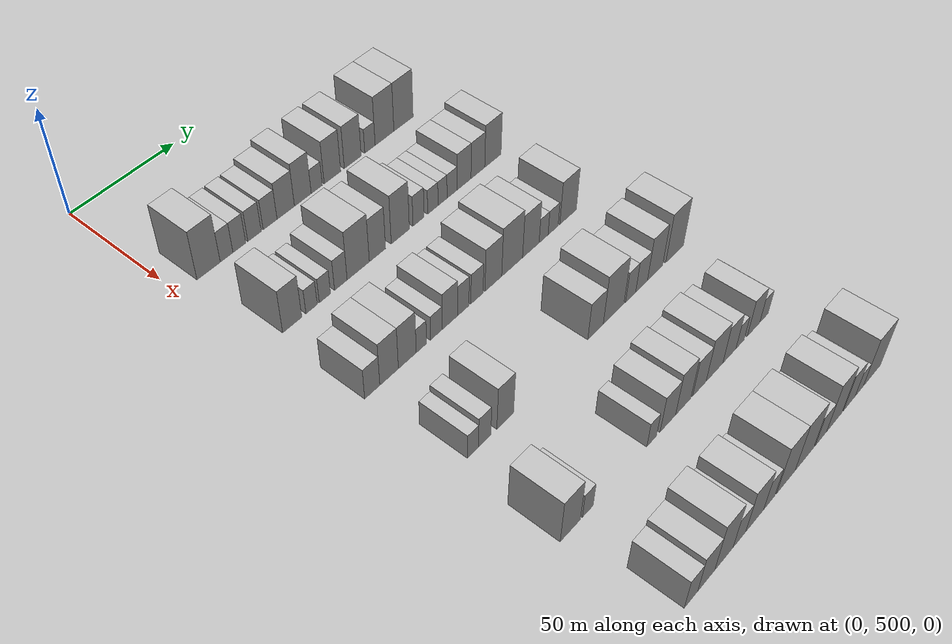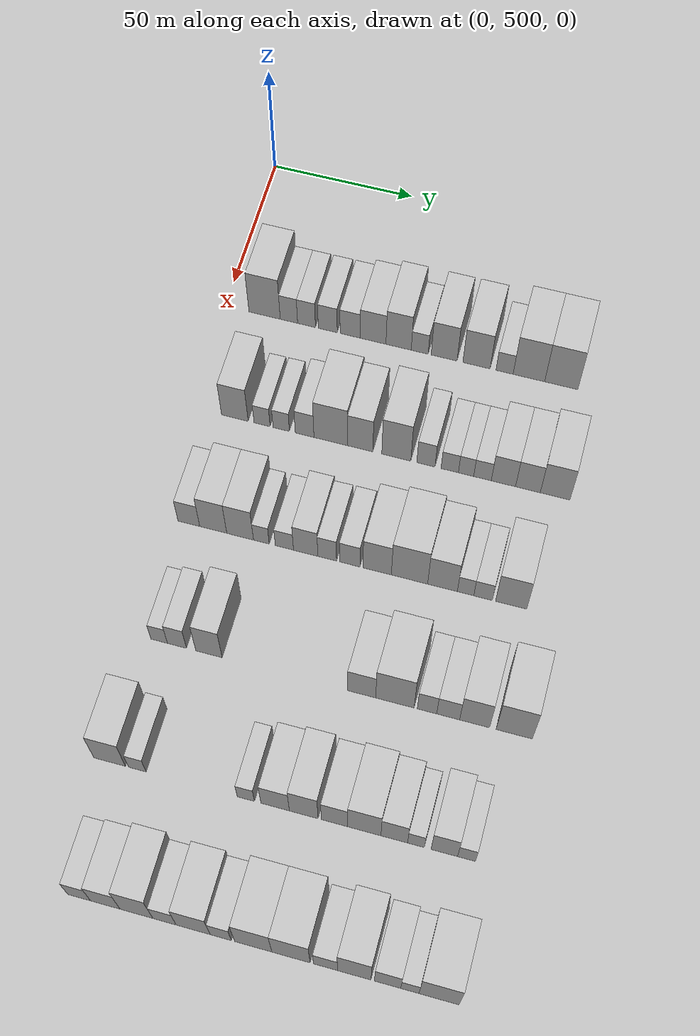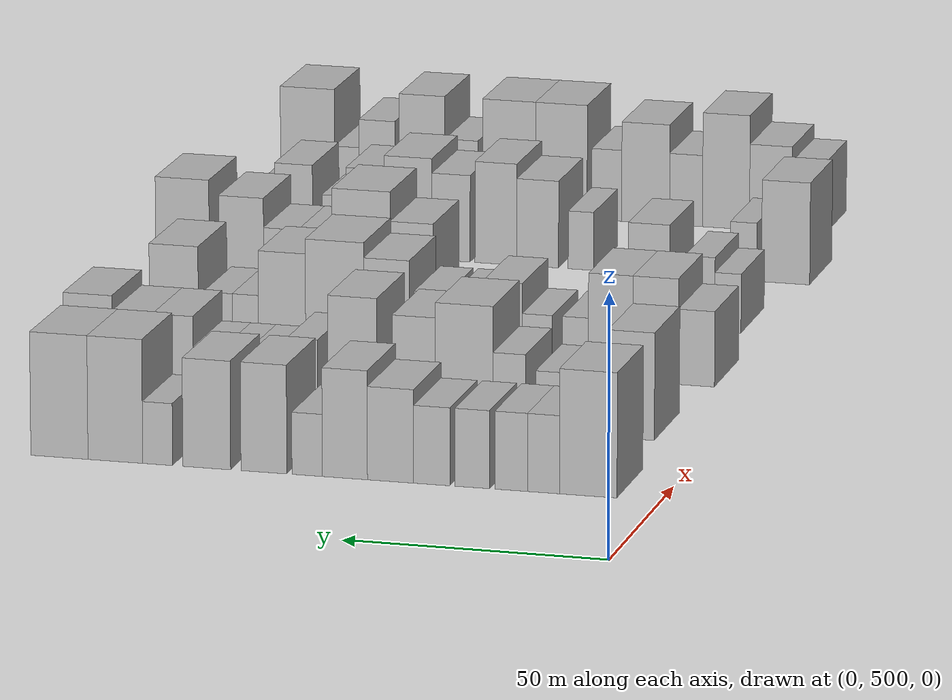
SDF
<sdf version="1.6">
 <world name="default">
  <model name="building_123">
   <static>1</static>
   <pose>50.0000 513.9154 0 0.000000 0.000000 0.000000</pose>
   <link name="link">
    <pose>0 0 12.00 0 0 0</pose>
    <collision name="collision"><geometry><box><size>20.0000 11.0060 24.0000</size></box></geometry></collision>
    <visual name="visual">
     <cast_shadows>0</cast_shadows>
     <geometry><box><size>20.0000 11.0060 24.0000</size></box></geometry>
     <material>
      <script>
       <uri>model://HANNAS_wall/materials/scripts</uri>
       <uri>model://HANNAS_wall/materials/textures</uri>
       <name>vrc/HANNAS_wall</name>
      </script>
     </material>
    </visual>
   </link>
  </model>
  <model name="building_124">
   <static>1</static>
   <pose>50.0000 522.4660 0 0.000000 0.000000 0.000000</pose>
   <link name="link">
    <pose>0 0 7.50 0 0 0</pose>
    <collision name="collision"><geometry><box><size>20.0000 6.0952 15.0000</size></box></geometry></collision>
    <visual name="visual">
     <cast_shadows>0</cast_shadows>
     <geometry><box><size>20.0000 6.0952 15.0000</size></box></geometry>
     <material>
      <script>
       <uri>model://HANNAS_wall/materials/scripts</uri>
       <uri>model://HANNAS_wall/materials/textures</uri>
       <name>vrc/HANNAS_wall</name>
      </script>
     </material>
    </visual>
   </link>
  </model>
  <model name="building_125">
   <static>1</static>
   <pose>50.0000 528.6390 0 0.000000 0.000000 0.000000</pose>
   <link name="link">
    <pose>0 0 7.50 0 0 0</pose>
    <collision name="collision"><geometry><box><size>20.0000 6.2508 15.0000</size></box></geometry></collision>
    <visual name="visual">
     <cast_shadows>0</cast_shadows>
     <geometry><box><size>20.0000 6.2508 15.0000</size></box></geometry>
     <material>
      <script>
       <uri>model://HANNAS_wall/materials/scripts</uri>
       <uri>model://HANNAS_wall/materials/textures</uri>
       <name>vrc/HANNAS_wall</name>
      </script>
     </material>
    </visual>
   </link>
  </model>
  <model name="building_126">
   <static>1</static>
   <pose>50.0000 536.0721 0 0.000000 0.000000 0.000000</pose>
   <link name="link">
    <pose>0 0 7.50 0 0 0</pose>
    <collision name="collision"><geometry><box><size>20.0000 6.6155 15.0000</size></box></geometry></collision>
    <visual name="visual">
     <cast_shadows>0</cast_shadows>
     <geometry><box><size>20.0000 6.6155 15.0000</size></box></geometry>
     <material>
      <script>
       <uri>model://HANNAS_wall/materials/scripts</uri>
       <uri>model://HANNAS_wall/materials/textures</uri>
       <name>vrc/HANNAS_wall</name>
      </script>
     </material>
    </visual>
   </link>
  </model>
  <model name="building_127">
   <static>1</static>
   <pose>50.0000 543.8717 0 0.000000 0.000000 0.000000</pose>
   <link name="link">
    <pose>0 0 7.50 0 0 0</pose>
    <collision name="collision"><geometry><box><size>20.0000 6.9836 15.0000</size></box></geometry></collision>
    <visual name="visual">
     <cast_shadows>0</cast_shadows>
     <geometry><box><size>20.0000 6.9836 15.0000</size></box></geometry>
     <material>
      <script>
       <uri>model://HANNAS_wall/materials/scripts</uri>
       <uri>model://HANNAS_wall/materials/textures</uri>
       <name>vrc/HANNAS_wall</name>
      </script>
     </material>
    </visual>
   </link>
  </model>
  <model name="building_128">
   <static>1</static>
   <pose>50.0000 551.8238 0 0.000000 0.000000 0.000000</pose>
   <link name="link">
    <pose>0 0 9.00 0 0 0</pose>
    <collision name="collision"><geometry><box><size>20.0000 8.9206 18.0000</size></box></geometry></collision>
    <visual name="visual">
     <cast_shadows>0</cast_shadows>
     <geometry><box><size>20.0000 8.9206 18.0000</size></box></geometry>
     <material>
      <script>
       <uri>model://HANNAS_wall/materials/scripts</uri>
       <uri>model://HANNAS_wall/materials/textures</uri>
       <name>vrc/HANNAS_wall</name>
      </script>
     </material>
    </visual>
   </link>
  </model>
  <model name="building_129">
   <static>1</static>
   <pose>50.0000 560.6612 0 0.000000 0.000000 0.000000</pose>
   <link name="link">
    <pose>0 0 10.50 0 0 0</pose>
    <collision name="collision"><geometry><box><size>20.0000 8.7543 21.0000</size></box></geometry></collision>
    <visual name="visual">
     <cast_shadows>0</cast_shadows>
     <geometry><box><size>20.0000 8.7543 21.0000</size></box></geometry>
     <material>
      <script>
       <uri>model://HANNAS_wall/materials/scripts</uri>
       <uri>model://HANNAS_wall/materials/textures</uri>
       <name>vrc/HANNAS_wall</name>
      </script>
     </material>
    </visual>
   </link>
  </model>
  <model name="building_130">
   <static>1</static>
   <pose>50.0000 567.9628 0 0.000000 0.000000 0.000000</pose>
   <link name="link">
    <pose>0 0 6.00 0 0 0</pose>
    <collision name="collision"><geometry><box><size>20.0000 5.8488 12.0000</size></box></geometry></collision>
    <visual name="visual">
     <cast_shadows>0</cast_shadows>
     <geometry><box><size>20.0000 5.8488 12.0000</size></box></geometry>
     <material>
      <script>
       <uri>model://HANNAS_wall/materials/scripts</uri>
       <uri>model://HANNAS_wall/materials/textures</uri>
       <name>vrc/HANNAS_wall</name>
      </script>
     </material>
    </visual>
   </link>
  </model>
  <model name="building_131">
   <static>1</static>
   <pose>50.0000 576.3383 0 0.000000 0.000000 0.000000</pose>
   <link name="link">
    <pose>0 0 10.50 0 0 0</pose>
    <collision name="collision"><geometry><box><size>20.0000 8.9023 21.0000</size></box></geometry></collision>
    <visual name="visual">
     <cast_shadows>0</cast_shadows>
     <geometry><box><size>20.0000 8.9023 21.0000</size></box></geometry>
     <material>
      <script>
       <uri>model://HANNAS_wall/materials/scripts</uri>
       <uri>model://HANNAS_wall/materials/textures</uri>
       <name>vrc/HANNAS_wall</name>
      </script>
     </material>
    </visual>
   </link>
  </model>
  <model name="building_132">
   <static>1</static>
   <pose>50.0000 587.4466 0 0.000000 0.000000 0.000000</pose>
   <link name="link">
    <pose>0 0 10.50 0 0 0</pose>
    <collision name="collision"><geometry><box><size>20.0000 9.3142 21.0000</size></box></geometry></collision>
    <visual name="visual">
     <cast_shadows>0</cast_shadows>
     <geometry><box><size>20.0000 9.3142 21.0000</size></box></geometry>
     <material>
      <script>
       <uri>model://HANNAS_wall/materials/scripts</uri>
       <uri>model://HANNAS_wall/materials/textures</uri>
       <name>vrc/HANNAS_wall</name>
      </script>
     </material>
    </visual>
   </link>
  </model>
  <model name="building_133">
   <static>1</static>
   <pose>50.0000 597.0192 0 0.000000 0.000000 0.000000</pose>
   <link name="link">
    <pose>0 0 6.00 0 0 0</pose>
    <collision name="collision"><geometry><box><size>20.0000 5.8309 12.0000</size></box></geometry></collision>
    <visual name="visual">
     <cast_shadows>0</cast_shadows>
     <geometry><box><size>20.0000 5.8309 12.0000</size></box></geometry>
     <material>
      <script>
       <uri>model://HANNAS_wall/materials/scripts</uri>
       <uri>model://HANNAS_wall/materials/textures</uri>
       <name>vrc/HANNAS_wall</name>
      </script>
     </material>
    </visual>
   </link>
  </model>
  <model name="building_134">
   <static>1</static>
   <pose>50.0000 605.2882 0 0.000000 0.000000 0.000000</pose>
   <link name="link">
    <pose>0 0 12.00 0 0 0</pose>
    <collision name="collision"><geometry><box><size>20.0000 10.7073 24.0000</size></box></geometry></collision>
    <visual name="visual">
     <cast_shadows>0</cast_shadows>
     <geometry><box><size>20.0000 10.7073 24.0000</size></box></geometry>
     <material>
      <script>
       <uri>model://HANNAS_wall/materials/scripts</uri>
       <uri>model://HANNAS_wall/materials/textures</uri>
       <name>vrc/HANNAS_wall</name>
      </script>
     </material>
    </visual>
   </link>
  </model>
  <model name="building_135">
   <static>1</static>
   <pose>50.0000 616.2493 0 0.000000 0.000000 0.000000</pose>
   <link name="link">
    <pose>0 0 12.00 0 0 0</pose>
    <collision name="collision"><geometry><box><size>20.0000 11.2149 24.0000</size></box></geometry></collision>
    <visual name="visual">
     <cast_shadows>0</cast_shadows>
     <geometry><box><size>20.0000 11.2149 24.0000</size></box></geometry>
     <material>
      <script>
       <uri>model://HANNAS_wall/materials/scripts</uri>
       <uri>model://HANNAS_wall/materials/textures</uri>
       <name>vrc/HANNAS_wall</name>
      </script>
     </material>
    </visual>
   </link>
  </model>
  <model name="building_263">
   <static>1</static>
   <pose>90.0000 515.6622 0 0.000000 0.000000 0.000000</pose>
   <link name="link">
    <pose>0 0 10.50 0 0 0</pose>
    <collision name="collision"><geometry><box><size>20.0000 9.1155 21.0000</size></box></geometry></collision>
    <visual name="visual">
     <cast_shadows>0</cast_shadows>
     <geometry><box><size>20.0000 9.1155 21.0000</size></box></geometry>
     <material>
      <script>
       <uri>model://HANNAS_wall/materials/scripts</uri>
       <uri>model://HANNAS_wall/materials/textures</uri>
       <name>vrc/HANNAS_wall</name>
      </script>
     </material>
    </visual>
   </link>
  </model>
  <model name="building_264">
   <static>1</static>
   <pose>90.0000 524.9588 0 0.000000 0.000000 0.000000</pose>
   <link name="link">
    <pose>0 0 6.00 0 0 0</pose>
    <collision name="collision"><geometry><box><size>20.0000 5.4777 12.0000</size></box></geometry></collision>
    <visual name="visual">
     <cast_shadows>0</cast_shadows>
     <geometry><box><size>20.0000 5.4777 12.0000</size></box></geometry>
     <material>
      <script>
       <uri>model://HANNAS_wall/materials/scripts</uri>
       <uri>model://HANNAS_wall/materials/textures</uri>
       <name>vrc/HANNAS_wall</name>
      </script>
     </material>
    </visual>
   </link>
  </model>
  <model name="building_265">
   <static>1</static>
   <pose>90.0000 531.4737 0 0.000000 0.000000 0.000000</pose>
   <link name="link">
    <pose>0 0 6.00 0 0 0</pose>
    <collision name="collision"><geometry><box><size>20.0000 5.5520 12.0000</size></box></geometry></collision>
    <visual name="visual">
     <cast_shadows>0</cast_shadows>
     <geometry><box><size>20.0000 5.5520 12.0000</size></box></geometry>
     <material>
      <script>
       <uri>model://HANNAS_wall/materials/scripts</uri>
       <uri>model://HANNAS_wall/materials/textures</uri>
       <name>vrc/HANNAS_wall</name>
      </script>
     </material>
    </visual>
   </link>
  </model>
  <model name="building_266">
   <static>1</static>
   <pose>90.0000 539.4101 0 0.000000 0.000000 0.000000</pose>
   <link name="link">
    <pose>0 0 7.50 0 0 0</pose>
    <collision name="collision"><geometry><box><size>20.0000 6.3207 15.0000</size></box></geometry></collision>
    <visual name="visual">
     <cast_shadows>0</cast_shadows>
     <geometry><box><size>20.0000 6.3207 15.0000</size></box></geometry>
     <material>
      <script>
       <uri>model://HANNAS_wall/materials/scripts</uri>
       <uri>model://HANNAS_wall/materials/textures</uri>
       <name>vrc/HANNAS_wall</name>
      </script>
     </material>
    </visual>
   </link>
  </model>
  <model name="building_267">
   <static>1</static>
   <pose>90.0000 548.2518 0 0.000000 0.000000 0.000000</pose>
   <link name="link">
    <pose>0 0 12.00 0 0 0</pose>
    <collision name="collision"><geometry><box><size>20.0000 11.3627 24.0000</size></box></geometry></collision>
    <visual name="visual">
     <cast_shadows>0</cast_shadows>
     <geometry><box><size>20.0000 11.3627 24.0000</size></box></geometry>
     <material>
      <script>
       <uri>model://HANNAS_wall/materials/scripts</uri>
       <uri>model://HANNAS_wall/materials/textures</uri>
       <name>vrc/HANNAS_wall</name>
      </script>
     </material>
    </visual>
   </link>
  </model>
  <model name="building_268">
   <static>1</static>
   <pose>90.0000 558.1723 0 0.000000 0.000000 0.000000</pose>
   <link name="link">
    <pose>0 0 10.50 0 0 0</pose>
    <collision name="collision"><geometry><box><size>20.0000 8.4783 21.0000</size></box></geometry></collision>
    <visual name="visual">
     <cast_shadows>0</cast_shadows>
     <geometry><box><size>20.0000 8.4783 21.0000</size></box></geometry>
     <material>
      <script>
       <uri>model://HANNAS_wall/materials/scripts</uri>
       <uri>model://HANNAS_wall/materials/textures</uri>
       <name>vrc/HANNAS_wall</name>
      </script>
     </material>
    </visual>
   </link>
  </model>
  <model name="building_269">
   <static>1</static>
   <pose>90.0000 570.2705 0 0.000000 0.000000 0.000000</pose>
   <link name="link">
    <pose>0 0 12.00 0 0 0</pose>
    <collision name="collision"><geometry><box><size>20.0000 9.7180 24.0000</size></box></geometry></collision>
    <visual name="visual">
     <cast_shadows>0</cast_shadows>
     <geometry><box><size>20.0000 9.7180 24.0000</size></box></geometry>
     <material>
      <script>
       <uri>model://HANNAS_wall/materials/scripts</uri>
       <uri>model://HANNAS_wall/materials/textures</uri>
       <name>vrc/HANNAS_wall</name>
      </script>
     </material>
    </visual>
   </link>
  </model>
  <model name="building_270">
   <static>1</static>
   <pose>90.0000 580.1605 0 0.000000 0.000000 0.000000</pose>
   <link name="link">
    <pose>0 0 7.50 0 0 0</pose>
    <collision name="collision"><geometry><box><size>20.0000 6.0621 15.0000</size></box></geometry></collision>
    <visual name="visual">
     <cast_shadows>0</cast_shadows>
     <geometry><box><size>20.0000 6.0621 15.0000</size></box></geometry>
     <material>
      <script>
       <uri>model://HANNAS_wall/materials/scripts</uri>
       <uri>model://HANNAS_wall/materials/textures</uri>
       <name>vrc/HANNAS_wall</name>
      </script>
     </material>
    </visual>
   </link>
  </model>
  <model name="building_271">
   <static>1</static>
   <pose>90.0000 588.0734 0 0.000000 0.000000 0.000000</pose>
   <link name="link">
    <pose>0 0 6.00 0 0 0</pose>
    <collision name="collision"><geometry><box><size>20.0000 5.7637 12.0000</size></box></geometry></collision>
    <visual name="visual">
     <cast_shadows>0</cast_shadows>
     <geometry><box><size>20.0000 5.7637 12.0000</size></box></geometry>
     <material>
      <script>
       <uri>model://HANNAS_wall/materials/scripts</uri>
       <uri>model://HANNAS_wall/materials/textures</uri>
       <name>vrc/HANNAS_wall</name>
      </script>
     </material>
    </visual>
   </link>
  </model>
  <model name="building_272">
   <static>1</static>
   <pose>90.0000 593.4916 0 0.000000 0.000000 0.000000</pose>
   <link name="link">
    <pose>0 0 6.00 0 0 0</pose>
    <collision name="collision"><geometry><box><size>20.0000 5.0728 12.0000</size></box></geometry></collision>
    <visual name="visual">
     <cast_shadows>0</cast_shadows>
     <geometry><box><size>20.0000 5.0728 12.0000</size></box></geometry>
     <material>
      <script>
       <uri>model://HANNAS_wall/materials/scripts</uri>
       <uri>model://HANNAS_wall/materials/textures</uri>
       <name>vrc/HANNAS_wall</name>
      </script>
     </material>
    </visual>
   </link>
  </model>
  <model name="building_273">
   <static>1</static>
   <pose>90.0000 598.9297 0 0.000000 0.000000 0.000000</pose>
   <link name="link">
    <pose>0 0 6.00 0 0 0</pose>
    <collision name="collision"><geometry><box><size>20.0000 5.8034 12.0000</size></box></geometry></collision>
    <visual name="visual">
     <cast_shadows>0</cast_shadows>
     <geometry><box><size>20.0000 5.8034 12.0000</size></box></geometry>
     <material>
      <script>
       <uri>model://HANNAS_wall/materials/scripts</uri>
       <uri>model://HANNAS_wall/materials/textures</uri>
       <name>vrc/HANNAS_wall</name>
      </script>
     </material>
    </visual>
   </link>
  </model>
  <model name="building_274">
   <static>1</static>
   <pose>90.0000 605.8333 0 0.000000 0.000000 0.000000</pose>
   <link name="link">
    <pose>0 0 9.00 0 0 0</pose>
    <collision name="collision"><geometry><box><size>20.0000 8.0039 18.0000</size></box></geometry></collision>
    <visual name="visual">
     <cast_shadows>0</cast_shadows>
     <geometry><box><size>20.0000 8.0039 18.0000</size></box></geometry>
     <material>
      <script>
       <uri>model://HANNAS_wall/materials/scripts</uri>
       <uri>model://HANNAS_wall/materials/textures</uri>
       <name>vrc/HANNAS_wall</name>
      </script>
     </material>
    </visual>
   </link>
  </model>
  <model name="building_275">
   <static>1</static>
   <pose>90.0000 613.8833 0 0.000000 0.000000 0.000000</pose>
   <link name="link">
    <pose>0 0 9.00 0 0 0</pose>
    <collision name="collision"><geometry><box><size>20.0000 8.0961 18.0000</size></box></geometry></collision>
    <visual name="visual">
     <cast_shadows>0</cast_shadows>
     <geometry><box><size>20.0000 8.0961 18.0000</size></box></geometry>
     <material>
      <script>
       <uri>model://HANNAS_wall/materials/scripts</uri>
       <uri>model://HANNAS_wall/materials/textures</uri>
       <name>vrc/HANNAS_wall</name>
      </script>
     </material>
    </visual>
   </link>
  </model>
  <model name="building_276">
   <static>1</static>
   <pose>90.0000 622.7938 0 0.000000 0.000000 0.000000</pose>
   <link name="link">
    <pose>0 0 10.50 0 0 0</pose>
    <collision name="collision"><geometry><box><size>20.0000 9.7249 21.0000</size></box></geometry></collision>
    <visual name="visual">
     <cast_shadows>0</cast_shadows>
     <geometry><box><size>20.0000 9.7249 21.0000</size></box></geometry>
     <material>
      <script>
       <uri>model://HANNAS_wall/materials/scripts</uri>
       <uri>model://HANNAS_wall/materials/textures</uri>
       <name>vrc/HANNAS_wall</name>
      </script>
     </material>
    </visual>
   </link>
  </model>
  <model name="building_402">
   <static>1</static>
   <pose>130.0000 512.5962 0 0.000000 0.000000 0.000000</pose>
   <link name="link">
    <pose>0 0 7.50 0 0 0</pose>
    <collision name="collision"><geometry><box><size>20.0000 7.2315 15.0000</size></box></geometry></collision>
    <visual name="visual">
     <cast_shadows>0</cast_shadows>
     <geometry><box><size>20.0000 7.2315 15.0000</size></box></geometry>
     <material>
      <script>
       <uri>model://HANNAS_wall/materials/scripts</uri>
       <uri>model://HANNAS_wall/materials/textures</uri>
       <name>vrc/HANNAS_wall</name>
      </script>
     </material>
    </visual>
   </link>
  </model>
  <model name="building_403">
   <static>1</static>
   <pose>130.0000 520.7017 0 0.000000 0.000000 0.000000</pose>
   <link name="link">
    <pose>0 0 10.50 0 0 0</pose>
    <collision name="collision"><geometry><box><size>20.0000 8.9796 21.0000</size></box></geometry></collision>
    <visual name="visual">
     <cast_shadows>0</cast_shadows>
     <geometry><box><size>20.0000 8.9796 21.0000</size></box></geometry>
     <material>
      <script>
       <uri>model://HANNAS_wall/materials/scripts</uri>
       <uri>model://HANNAS_wall/materials/textures</uri>
       <name>vrc/HANNAS_wall</name>
      </script>
     </material>
    </visual>
   </link>
  </model>
  <model name="building_404">
   <static>1</static>
   <pose>130.0000 529.6192 0 0.000000 0.000000 0.000000</pose>
   <link name="link">
    <pose>0 0 10.50 0 0 0</pose>
    <collision name="collision"><geometry><box><size>20.0000 8.8554 21.0000</size></box></geometry></collision>
    <visual name="visual">
     <cast_shadows>0</cast_shadows>
     <geometry><box><size>20.0000 8.8554 21.0000</size></box></geometry>
     <material>
      <script>
       <uri>model://HANNAS_wall/materials/scripts</uri>
       <uri>model://HANNAS_wall/materials/textures</uri>
       <name>vrc/HANNAS_wall</name>
      </script>
     </material>
    </visual>
   </link>
  </model>
  <model name="building_405">
   <static>1</static>
   <pose>130.0000 536.6345 0 0.000000 0.000000 0.000000</pose>
   <link name="link">
    <pose>0 0 6.00 0 0 0</pose>
    <collision name="collision"><geometry><box><size>20.0000 5.1753 12.0000</size></box></geometry></collision>
    <visual name="visual">
     <cast_shadows>0</cast_shadows>
     <geometry><box><size>20.0000 5.1753 12.0000</size></box></geometry>
     <material>
      <script>
       <uri>model://HANNAS_wall/materials/scripts</uri>
       <uri>model://HANNAS_wall/materials/textures</uri>
       <name>vrc/HANNAS_wall</name>
      </script>
     </material>
    </visual>
   </link>
  </model>
  <model name="building_406">
   <static>1</static>
   <pose>130.0000 544.2074 0 0.000000 0.000000 0.000000</pose>
   <link name="link">
    <pose>0 0 6.00 0 0 0</pose>
    <collision name="collision"><geometry><box><size>20.0000 5.9705 12.0000</size></box></geometry></collision>
    <visual name="visual">
     <cast_shadows>0</cast_shadows>
     <geometry><box><size>20.0000 5.9705 12.0000</size></box></geometry>
     <material>
      <script>
       <uri>model://HANNAS_wall/materials/scripts</uri>
       <uri>model://HANNAS_wall/materials/textures</uri>
       <name>vrc/HANNAS_wall</name>
      </script>
     </material>
    </visual>
   </link>
  </model>
  <model name="building_407">
   <static>1</static>
   <pose>130.0000 551.1805 0 0.000000 0.000000 0.000000</pose>
   <link name="link">
    <pose>0 0 9.00 0 0 0</pose>
    <collision name="collision"><geometry><box><size>20.0000 7.9755 18.0000</size></box></geometry></collision>
    <visual name="visual">
     <cast_shadows>0</cast_shadows>
     <geometry><box><size>20.0000 7.9755 18.0000</size></box></geometry>
     <material>
      <script>
       <uri>model://HANNAS_wall/materials/scripts</uri>
       <uri>model://HANNAS_wall/materials/textures</uri>
       <name>vrc/HANNAS_wall</name>
      </script>
     </material>
    </visual>
   </link>
  </model>
  <model name="building_408">
   <static>1</static>
   <pose>130.0000 558.2150 0 0.000000 0.000000 0.000000</pose>
   <link name="link">
    <pose>0 0 7.50 0 0 0</pose>
    <collision name="collision"><geometry><box><size>20.0000 6.0936 15.0000</size></box></geometry></collision>
    <visual name="visual">
     <cast_shadows>0</cast_shadows>
     <geometry><box><size>20.0000 6.0936 15.0000</size></box></geometry>
     <material>
      <script>
       <uri>model://HANNAS_wall/materials/scripts</uri>
       <uri>model://HANNAS_wall/materials/textures</uri>
       <name>vrc/HANNAS_wall</name>
      </script>
     </material>
    </visual>
   </link>
  </model>
  <model name="building_409">
   <static>1</static>
   <pose>130.0000 565.5710 0 0.000000 0.000000 0.000000</pose>
   <link name="link">
    <pose>0 0 7.50 0 0 0</pose>
    <collision name="collision"><geometry><box><size>20.0000 6.6184 15.0000</size></box></geometry></collision>
    <visual name="visual">
     <cast_shadows>0</cast_shadows>
     <geometry><box><size>20.0000 6.6184 15.0000</size></box></geometry>
     <material>
      <script>
       <uri>model://HANNAS_wall/materials/scripts</uri>
       <uri>model://HANNAS_wall/materials/textures</uri>
       <name>vrc/HANNAS_wall</name>
      </script>
     </material>
    </visual>
   </link>
  </model>
  <model name="building_410">
   <static>1</static>
   <pose>130.0000 574.4675 0 0.000000 0.000000 0.000000</pose>
   <link name="link">
    <pose>0 0 10.50 0 0 0</pose>
    <collision name="collision"><geometry><box><size>20.0000 9.1747 21.0000</size></box></geometry></collision>
    <visual name="visual">
     <cast_shadows>0</cast_shadows>
     <geometry><box><size>20.0000 9.1747 21.0000</size></box></geometry>
     <material>
      <script>
       <uri>model://HANNAS_wall/materials/scripts</uri>
       <uri>model://HANNAS_wall/materials/textures</uri>
       <name>vrc/HANNAS_wall</name>
      </script>
     </material>
    </visual>
   </link>
  </model>
  <model name="building_411">
   <static>1</static>
   <pose>130.0000 584.9172 0 0.000000 0.000000 0.000000</pose>
   <link name="link">
    <pose>0 0 12.00 0 0 0</pose>
    <collision name="collision"><geometry><box><size>20.0000 11.7246 24.0000</size></box></geometry></collision>
    <visual name="visual">
     <cast_shadows>0</cast_shadows>
     <geometry><box><size>20.0000 11.7246 24.0000</size></box></geometry>
     <material>
      <script>
       <uri>model://HANNAS_wall/materials/scripts</uri>
       <uri>model://HANNAS_wall/materials/textures</uri>
       <name>vrc/HANNAS_wall</name>
      </script>
     </material>
    </visual>
   </link>
  </model>
  <model name="building_412">
   <static>1</static>
   <pose>130.0000 595.5409 0 0.000000 0.000000 0.000000</pose>
   <link name="link">
    <pose>0 0 10.50 0 0 0</pose>
    <collision name="collision"><geometry><box><size>20.0000 9.5229 21.0000</size></box></geometry></collision>
    <visual name="visual">
     <cast_shadows>0</cast_shadows>
     <geometry><box><size>20.0000 9.5229 21.0000</size></box></geometry>
     <material>
      <script>
       <uri>model://HANNAS_wall/materials/scripts</uri>
       <uri>model://HANNAS_wall/materials/textures</uri>
       <name>vrc/HANNAS_wall</name>
      </script>
     </material>
    </visual>
   </link>
  </model>
  <model name="building_413">
   <static>1</static>
   <pose>130.0000 602.9442 0 0.000000 0.000000 0.000000</pose>
   <link name="link">
    <pose>0 0 6.00 0 0 0</pose>
    <collision name="collision"><geometry><box><size>20.0000 5.2838 12.0000</size></box></geometry></collision>
    <visual name="visual">
     <cast_shadows>0</cast_shadows>
     <geometry><box><size>20.0000 5.2838 12.0000</size></box></geometry>
     <material>
      <script>
       <uri>model://HANNAS_wall/materials/scripts</uri>
       <uri>model://HANNAS_wall/materials/textures</uri>
       <name>vrc/HANNAS_wall</name>
      </script>
     </material>
    </visual>
   </link>
  </model>
  <model name="building_414">
   <static>1</static>
   <pose>130.0000 608.5498 0 0.000000 0.000000 0.000000</pose>
   <link name="link">
    <pose>0 0 6.00 0 0 0</pose>
    <collision name="collision"><geometry><box><size>20.0000 5.9273 12.0000</size></box></geometry></collision>
    <visual name="visual">
     <cast_shadows>0</cast_shadows>
     <geometry><box><size>20.0000 5.9273 12.0000</size></box></geometry>
     <material>
      <script>
       <uri>model://HANNAS_wall/materials/scripts</uri>
       <uri>model://HANNAS_wall/materials/textures</uri>
       <name>vrc/HANNAS_wall</name>
      </script>
     </material>
    </visual>
   </link>
  </model>
  <model name="building_415">
   <static>1</static>
   <pose>130.0000 617.4828 0 0.000000 0.000000 0.000000</pose>
   <link name="link">
    <pose>0 0 10.50 0 0 0</pose>
    <collision name="collision"><geometry><box><size>20.0000 9.9388 21.0000</size></box></geometry></collision>
    <visual name="visual">
     <cast_shadows>0</cast_shadows>
     <geometry><box><size>20.0000 9.9388 21.0000</size></box></geometry>
     <material>
      <script>
       <uri>model://HANNAS_wall/materials/scripts</uri>
       <uri>model://HANNAS_wall/materials/textures</uri>
       <name>vrc/HANNAS_wall</name>
      </script>
     </material>
    </visual>
   </link>
  </model>
  <model name="building_542">
   <static>1</static>
   <pose>170.0000 515.8310 0 0.000000 0.000000 0.000000</pose>
   <link name="link">
    <pose>0 0 6.00 0 0 0</pose>
    <collision name="collision"><geometry><box><size>20.0000 5.3026 12.0000</size></box></geometry></collision>
    <visual name="visual">
     <cast_shadows>0</cast_shadows>
     <geometry><box><size>20.0000 5.3026 12.0000</size></box></geometry>
     <material>
      <script>
       <uri>model://HANNAS_wall/materials/scripts</uri>
       <uri>model://HANNAS_wall/materials/textures</uri>
       <name>vrc/HANNAS_wall</name>
      </script>
     </material>
    </visual>
   </link>
  </model>
  <model name="building_543">
   <static>1</static>
   <pose>170.0000 521.5454 0 0.000000 0.000000 0.000000</pose>
   <link name="link">
    <pose>0 0 7.50 0 0 0</pose>
    <collision name="collision"><geometry><box><size>20.0000 6.1261 15.0000</size></box></geometry></collision>
    <visual name="visual">
     <cast_shadows>0</cast_shadows>
     <geometry><box><size>20.0000 6.1261 15.0000</size></box></geometry>
     <material>
      <script>
       <uri>model://HANNAS_wall/materials/scripts</uri>
       <uri>model://HANNAS_wall/materials/textures</uri>
       <name>vrc/HANNAS_wall</name>
      </script>
     </material>
    </visual>
   </link>
  </model>
  <model name="building_544">
   <static>1</static>
   <pose>170.0000 531.8260 0 0.000000 0.000000 0.000000</pose>
   <link name="link">
    <pose>0 0 10.50 0 0 0</pose>
    <collision name="collision"><geometry><box><size>20.0000 8.4350 21.0000</size></box></geometry></collision>
    <visual name="visual">
     <cast_shadows>0</cast_shadows>
     <geometry><box><size>20.0000 8.4350 21.0000</size></box></geometry>
     <material>
      <script>
       <uri>model://HANNAS_wall/materials/scripts</uri>
       <uri>model://HANNAS_wall/materials/textures</uri>
       <name>vrc/HANNAS_wall</name>
      </script>
     </material>
    </visual>
   </link>
  </model>
  <model name="building_545">
   <static>1</static>
   <pose>170.0000 580.2245 0 0.000000 0.000000 0.000000</pose>
   <link name="link">
    <pose>0 0 9.00 0 0 0</pose>
    <collision name="collision"><geometry><box><size>20.0000 8.7873 18.0000</size></box></geometry></collision>
    <visual name="visual">
     <cast_shadows>0</cast_shadows>
     <geometry><box><size>20.0000 8.7873 18.0000</size></box></geometry>
     <material>
      <script>
       <uri>model://HANNAS_wall/materials/scripts</uri>
       <uri>model://HANNAS_wall/materials/textures</uri>
       <name>vrc/HANNAS_wall</name>
      </script>
     </material>
    </visual>
   </link>
  </model>
  <model name="building_546">
   <static>1</static>
   <pose>170.0000 590.6060 0 0.000000 0.000000 0.000000</pose>
   <link name="link">
    <pose>0 0 12.00 0 0 0</pose>
    <collision name="collision"><geometry><box><size>20.0000 11.9756 24.0000</size></box></geometry></collision>
    <visual name="visual">
     <cast_shadows>0</cast_shadows>
     <geometry><box><size>20.0000 11.9756 24.0000</size></box></geometry>
     <material>
      <script>
       <uri>model://HANNAS_wall/materials/scripts</uri>
       <uri>model://HANNAS_wall/materials/textures</uri>
       <name>vrc/HANNAS_wall</name>
      </script>
     </material>
    </visual>
   </link>
  </model>
  <model name="building_547">
   <static>1</static>
   <pose>170.0000 600.6072 0 0.000000 0.000000 0.000000</pose>
   <link name="link">
    <pose>0 0 7.50 0 0 0</pose>
    <collision name="collision"><geometry><box><size>20.0000 6.0269 15.0000</size></box></geometry></collision>
    <visual name="visual">
     <cast_shadows>0</cast_shadows>
     <geometry><box><size>20.0000 6.0269 15.0000</size></box></geometry>
     <material>
      <script>
       <uri>model://HANNAS_wall/materials/scripts</uri>
       <uri>model://HANNAS_wall/materials/textures</uri>
       <name>vrc/HANNAS_wall</name>
      </script>
     </material>
    </visual>
   </link>
  </model>
  <model name="building_548">
   <static>1</static>
   <pose>170.0000 607.1720 0 0.000000 0.000000 0.000000</pose>
   <link name="link">
    <pose>0 0 7.50 0 0 0</pose>
    <collision name="collision"><geometry><box><size>20.0000 7.1027 15.0000</size></box></geometry></collision>
    <visual name="visual">
     <cast_shadows>0</cast_shadows>
     <geometry><box><size>20.0000 7.1027 15.0000</size></box></geometry>
     <material>
      <script>
       <uri>model://HANNAS_wall/materials/scripts</uri>
       <uri>model://HANNAS_wall/materials/textures</uri>
       <name>vrc/HANNAS_wall</name>
      </script>
     </material>
    </visual>
   </link>
  </model>
  <model name="building_549">
   <static>1</static>
   <pose>170.0000 615.3501 0 0.000000 0.000000 0.000000</pose>
   <link name="link">
    <pose>0 0 10.50 0 0 0</pose>
    <collision name="collision"><geometry><box><size>20.0000 9.2533 21.0000</size></box></geometry></collision>
    <visual name="visual">
     <cast_shadows>0</cast_shadows>
     <geometry><box><size>20.0000 9.2533 21.0000</size></box></geometry>
     <material>
      <script>
       <uri>model://HANNAS_wall/materials/scripts</uri>
       <uri>model://HANNAS_wall/materials/textures</uri>
       <name>vrc/HANNAS_wall</name>
      </script>
     </material>
    </visual>
   </link>
  </model>
  <model name="building_550">
   <static>1</static>
   <pose>170.0000 627.5339 0 0.000000 0.000000 0.000000</pose>
   <link name="link">
    <pose>0 0 12.00 0 0 0</pose>
    <collision name="collision"><geometry><box><size>20.0000 11.1144 24.0000</size></box></geometry></collision>
    <visual name="visual">
     <cast_shadows>0</cast_shadows>
     <geometry><box><size>20.0000 11.1144 24.0000</size></box></geometry>
     <material>
      <script>
       <uri>model://HANNAS_wall/materials/scripts</uri>
       <uri>model://HANNAS_wall/materials/textures</uri>
       <name>vrc/HANNAS_wall</name>
      </script>
     </material>
    </visual>
   </link>
  </model>
  <model name="building_665">
   <static>1</static>
   <pose>210.0000 513.4303 0 0.000000 0.000000 0.000000</pose>
   <link name="link">
    <pose>0 0 10.50 0 0 0</pose>
    <collision name="collision"><geometry><box><size>20.0000 9.9039 21.0000</size></box></geometry></collision>
    <visual name="visual">
     <cast_shadows>0</cast_shadows>
     <geometry><box><size>20.0000 9.9039 21.0000</size></box></geometry>
     <material>
      <script>
       <uri>model://HANNAS_wall/materials/scripts</uri>
       <uri>model://HANNAS_wall/materials/textures</uri>
       <name>vrc/HANNAS_wall</name>
      </script>
     </material>
    </visual>
   </link>
  </model>
  <model name="building_666">
   <static>1</static>
   <pose>210.0000 522.1015 0 0.000000 0.000000 0.000000</pose>
   <link name="link">
    <pose>0 0 6.00 0 0 0</pose>
    <collision name="collision"><geometry><box><size>20.0000 5.4385 12.0000</size></box></geometry></collision>
    <visual name="visual">
     <cast_shadows>0</cast_shadows>
     <geometry><box><size>20.0000 5.4385 12.0000</size></box></geometry>
     <material>
      <script>
       <uri>model://HANNAS_wall/materials/scripts</uri>
       <uri>model://HANNAS_wall/materials/textures</uri>
       <name>vrc/HANNAS_wall</name>
      </script>
     </material>
    </visual>
   </link>
  </model>
  <model name="building_667">
   <static>1</static>
   <pose>210.0000 555.7390 0 0.000000 0.000000 0.000000</pose>
   <link name="link">
    <pose>0 0 6.00 0 0 0</pose>
    <collision name="collision"><geometry><box><size>20.0000 5.2788 12.0000</size></box></geometry></collision>
    <visual name="visual">
     <cast_shadows>0</cast_shadows>
     <geometry><box><size>20.0000 5.2788 12.0000</size></box></geometry>
     <material>
      <script>
       <uri>model://HANNAS_wall/materials/scripts</uri>
       <uri>model://HANNAS_wall/materials/textures</uri>
       <name>vrc/HANNAS_wall</name>
      </script>
     </material>
    </visual>
   </link>
  </model>
  <model name="building_668">
   <static>1</static>
   <pose>210.0000 564.7135 0 0.000000 0.000000 0.000000</pose>
   <link name="link">
    <pose>0 0 9.00 0 0 0</pose>
    <collision name="collision"><geometry><box><size>20.0000 8.6701 18.0000</size></box></geometry></collision>
    <visual name="visual">
     <cast_shadows>0</cast_shadows>
     <geometry><box><size>20.0000 8.6701 18.0000</size></box></geometry>
     <material>
      <script>
       <uri>model://HANNAS_wall/materials/scripts</uri>
       <uri>model://HANNAS_wall/materials/textures</uri>
       <name>vrc/HANNAS_wall</name>
      </script>
     </material>
    </visual>
   </link>
  </model>
  <model name="building_669">
   <static>1</static>
   <pose>210.0000 573.4268 0 0.000000 0.000000 0.000000</pose>
   <link name="link">
    <pose>0 0 10.50 0 0 0</pose>
    <collision name="collision"><geometry><box><size>20.0000 8.7564 21.0000</size></box></geometry></collision>
    <visual name="visual">
     <cast_shadows>0</cast_shadows>
     <geometry><box><size>20.0000 8.7564 21.0000</size></box></geometry>
     <material>
      <script>
       <uri>model://HANNAS_wall/materials/scripts</uri>
       <uri>model://HANNAS_wall/materials/textures</uri>
       <name>vrc/HANNAS_wall</name>
      </script>
     </material>
    </visual>
   </link>
  </model>
  <model name="building_670">
   <static>1</static>
   <pose>210.0000 582.7874 0 0.000000 0.000000 0.000000</pose>
   <link name="link">
    <pose>0 0 9.00 0 0 0</pose>
    <collision name="collision"><geometry><box><size>20.0000 7.9647 18.0000</size></box></geometry></collision>
    <visual name="visual">
     <cast_shadows>0</cast_shadows>
     <geometry><box><size>20.0000 7.9647 18.0000</size></box></geometry>
     <material>
      <script>
       <uri>model://HANNAS_wall/materials/scripts</uri>
       <uri>model://HANNAS_wall/materials/textures</uri>
       <name>vrc/HANNAS_wall</name>
      </script>
     </material>
    </visual>
   </link>
  </model>
  <model name="building_671">
   <static>1</static>
   <pose>210.0000 591.7881 0 0.000000 0.000000 0.000000</pose>
   <link name="link">
    <pose>0 0 10.50 0 0 0</pose>
    <collision name="collision"><geometry><box><size>20.0000 10.0369 21.0000</size></box></geometry></collision>
    <visual name="visual">
     <cast_shadows>0</cast_shadows>
     <geometry><box><size>20.0000 10.0369 21.0000</size></box></geometry>
     <material>
      <script>
       <uri>model://HANNAS_wall/materials/scripts</uri>
       <uri>model://HANNAS_wall/materials/textures</uri>
       <name>vrc/HANNAS_wall</name>
      </script>
     </material>
    </visual>
   </link>
  </model>
  <model name="building_672">
   <static>1</static>
   <pose>210.0000 600.8175 0 0.000000 0.000000 0.000000</pose>
   <link name="link">
    <pose>0 0 9.00 0 0 0</pose>
    <collision name="collision"><geometry><box><size>20.0000 8.0218 18.0000</size></box></geometry></collision>
    <visual name="visual">
     <cast_shadows>0</cast_shadows>
     <geometry><box><size>20.0000 8.0218 18.0000</size></box></geometry>
     <material>
      <script>
       <uri>model://HANNAS_wall/materials/scripts</uri>
       <uri>model://HANNAS_wall/materials/textures</uri>
       <name>vrc/HANNAS_wall</name>
      </script>
     </material>
    </visual>
   </link>
  </model>
  <model name="building_673">
   <static>1</static>
   <pose>210.0000 607.3503 0 0.000000 0.000000 0.000000</pose>
   <link name="link">
    <pose>0 0 6.00 0 0 0</pose>
    <collision name="collision"><geometry><box><size>20.0000 5.0438 12.0000</size></box></geometry></collision>
    <visual name="visual">
     <cast_shadows>0</cast_shadows>
     <geometry><box><size>20.0000 5.0438 12.0000</size></box></geometry>
     <material>
      <script>
       <uri>model://HANNAS_wall/materials/scripts</uri>
       <uri>model://HANNAS_wall/materials/textures</uri>
       <name>vrc/HANNAS_wall</name>
      </script>
     </material>
    </visual>
   </link>
  </model>
  <model name="building_674">
   <static>1</static>
   <pose>210.0000 615.8391 0 0.000000 0.000000 0.000000</pose>
   <link name="link">
    <pose>0 0 9.00 0 0 0</pose>
    <collision name="collision"><geometry><box><size>20.0000 7.9339 18.0000</size></box></geometry></collision>
    <visual name="visual">
     <cast_shadows>0</cast_shadows>
     <geometry><box><size>20.0000 7.9339 18.0000</size></box></geometry>
     <material>
      <script>
       <uri>model://HANNAS_wall/materials/scripts</uri>
       <uri>model://HANNAS_wall/materials/textures</uri>
       <name>vrc/HANNAS_wall</name>
      </script>
     </material>
    </visual>
   </link>
  </model>
  <model name="building_675">
   <static>1</static>
   <pose>210.0000 622.4721 0 0.000000 0.000000 0.000000</pose>
   <link name="link">
    <pose>0 0 6.00 0 0 0</pose>
    <collision name="collision"><geometry><box><size>20.0000 5.3321 12.0000</size></box></geometry></collision>
    <visual name="visual">
     <cast_shadows>0</cast_shadows>
     <geometry><box><size>20.0000 5.3321 12.0000</size></box></geometry>
     <material>
      <script>
       <uri>model://HANNAS_wall/materials/scripts</uri>
       <uri>model://HANNAS_wall/materials/textures</uri>
       <name>vrc/HANNAS_wall</name>
      </script>
     </material>
    </visual>
   </link>
  </model>
  <model name="building_799">
   <static>1</static>
   <pose>250.0000 517.9288 0 0.000000 0.000000 0.000000</pose>
   <link name="link">
    <pose>0 0 7.50 0 0 0</pose>
    <collision name="collision"><geometry><box><size>20.0000 6.8913 15.0000</size></box></geometry></collision>
    <visual name="visual">
     <cast_shadows>0</cast_shadows>
     <geometry><box><size>20.0000 6.8913 15.0000</size></box></geometry>
     <material>
      <script>
       <uri>model://HANNAS_wall/materials/scripts</uri>
       <uri>model://HANNAS_wall/materials/textures</uri>
       <name>vrc/HANNAS_wall</name>
      </script>
     </material>
    </visual>
   </link>
  </model>
  <model name="building_800">
   <static>1</static>
   <pose>250.0000 525.8213 0 0.000000 0.000000 0.000000</pose>
   <link name="link">
    <pose>0 0 9.00 0 0 0</pose>
    <collision name="collision"><geometry><box><size>20.0000 8.8936 18.0000</size></box></geometry></collision>
    <visual name="visual">
     <cast_shadows>0</cast_shadows>
     <geometry><box><size>20.0000 8.8936 18.0000</size></box></geometry>
     <material>
      <script>
       <uri>model://HANNAS_wall/materials/scripts</uri>
       <uri>model://HANNAS_wall/materials/textures</uri>
       <name>vrc/HANNAS_wall</name>
      </script>
     </material>
    </visual>
   </link>
  </model>
  <model name="building_801">
   <static>1</static>
   <pose>250.0000 535.2133 0 0.000000 0.000000 0.000000</pose>
   <link name="link">
    <pose>0 0 12.00 0 0 0</pose>
    <collision name="collision"><geometry><box><size>20.0000 9.8905 24.0000</size></box></geometry></collision>
    <visual name="visual">
     <cast_shadows>0</cast_shadows>
     <geometry><box><size>20.0000 9.8905 24.0000</size></box></geometry>
     <material>
      <script>
       <uri>model://HANNAS_wall/materials/scripts</uri>
       <uri>model://HANNAS_wall/materials/textures</uri>
       <name>vrc/HANNAS_wall</name>
      </script>
     </material>
    </visual>
   </link>
  </model>
  <model name="building_802">
   <static>1</static>
   <pose>250.0000 543.6274 0 0.000000 0.000000 0.000000</pose>
   <link name="link">
    <pose>0 0 7.50 0 0 0</pose>
    <collision name="collision"><geometry><box><size>20.0000 6.9376 15.0000</size></box></geometry></collision>
    <visual name="visual">
     <cast_shadows>0</cast_shadows>
     <geometry><box><size>20.0000 6.9376 15.0000</size></box></geometry>
     <material>
      <script>
       <uri>model://HANNAS_wall/materials/scripts</uri>
       <uri>model://HANNAS_wall/materials/textures</uri>
       <name>vrc/HANNAS_wall</name>
      </script>
     </material>
    </visual>
   </link>
  </model>
  <model name="building_803">
   <static>1</static>
   <pose>250.0000 552.1567 0 0.000000 0.000000 0.000000</pose>
   <link name="link">
    <pose>0 0 10.50 0 0 0</pose>
    <collision name="collision"><geometry><box><size>20.0000 10.1211 21.0000</size></box></geometry></collision>
    <visual name="visual">
     <cast_shadows>0</cast_shadows>
     <geometry><box><size>20.0000 10.1211 21.0000</size></box></geometry>
     <material>
      <script>
       <uri>model://HANNAS_wall/materials/scripts</uri>
       <uri>model://HANNAS_wall/materials/textures</uri>
       <name>vrc/HANNAS_wall</name>
      </script>
     </material>
    </visual>
   </link>
  </model>
  <model name="building_804">
   <static>1</static>
   <pose>250.0000 560.3763 0 0.000000 0.000000 0.000000</pose>
   <link name="link">
    <pose>0 0 7.50 0 0 0</pose>
    <collision name="collision"><geometry><box><size>20.0000 6.3181 15.0000</size></box></geometry></collision>
    <visual name="visual">
     <cast_shadows>0</cast_shadows>
     <geometry><box><size>20.0000 6.3181 15.0000</size></box></geometry>
     <material>
      <script>
       <uri>model://HANNAS_wall/materials/scripts</uri>
       <uri>model://HANNAS_wall/materials/textures</uri>
       <name>vrc/HANNAS_wall</name>
      </script>
     </material>
    </visual>
   </link>
  </model>
  <model name="building_805">
   <static>1</static>
   <pose>250.0000 570.0157 0 0.000000 0.000000 0.000000</pose>
   <link name="link">
    <pose>0 0 12.00 0 0 0</pose>
    <collision name="collision"><geometry><box><size>20.0000 10.9608 24.0000</size></box></geometry></collision>
    <visual name="visual">
     <cast_shadows>0</cast_shadows>
     <geometry><box><size>20.0000 10.9608 24.0000</size></box></geometry>
     <material>
      <script>
       <uri>model://HANNAS_wall/materials/scripts</uri>
       <uri>model://HANNAS_wall/materials/textures</uri>
       <name>vrc/HANNAS_wall</name>
      </script>
     </material>
    </visual>
   </link>
  </model>
  <model name="building_806">
   <static>1</static>
   <pose>250.0000 581.1145 0 0.000000 0.000000 0.000000</pose>
   <link name="link">
    <pose>0 0 12.00 0 0 0</pose>
    <collision name="collision"><geometry><box><size>20.0000 11.2367 24.0000</size></box></geometry></collision>
    <visual name="visual">
     <cast_shadows>0</cast_shadows>
     <geometry><box><size>20.0000 11.2367 24.0000</size></box></geometry>
     <material>
      <script>
       <uri>model://HANNAS_wall/materials/scripts</uri>
       <uri>model://HANNAS_wall/materials/textures</uri>
       <name>vrc/HANNAS_wall</name>
      </script>
     </material>
    </visual>
   </link>
  </model>
  <model name="building_807">
   <static>1</static>
   <pose>250.0000 591.2495 0 0.000000 0.000000 0.000000</pose>
   <link name="link">
    <pose>0 0 7.50 0 0 0</pose>
    <collision name="collision"><geometry><box><size>20.0000 7.0334 15.0000</size></box></geometry></collision>
    <visual name="visual">
     <cast_shadows>0</cast_shadows>
     <geometry><box><size>20.0000 7.0334 15.0000</size></box></geometry>
     <material>
      <script>
       <uri>model://HANNAS_wall/materials/scripts</uri>
       <uri>model://HANNAS_wall/materials/textures</uri>
       <name>vrc/HANNAS_wall</name>
      </script>
     </material>
    </visual>
   </link>
  </model>
  <model name="building_808">
   <static>1</static>
   <pose>250.0000 599.6218 0 0.000000 0.000000 0.000000</pose>
   <link name="link">
    <pose>0 0 12.00 0 0 0</pose>
    <collision name="collision"><geometry><box><size>20.0000 9.7111 24.0000</size></box></geometry></collision>
    <visual name="visual">
     <cast_shadows>0</cast_shadows>
     <geometry><box><size>20.0000 9.7111 24.0000</size></box></geometry>
     <material>
      <script>
       <uri>model://HANNAS_wall/materials/scripts</uri>
       <uri>model://HANNAS_wall/materials/textures</uri>
       <name>vrc/HANNAS_wall</name>
      </script>
     </material>
    </visual>
   </link>
  </model>
  <model name="building_809">
   <static>1</static>
   <pose>250.0000 609.3020 0 0.000000 0.000000 0.000000</pose>
   <link name="link">
    <pose>0 0 9.00 0 0 0</pose>
    <collision name="collision"><geometry><box><size>20.0000 7.6494 18.0000</size></box></geometry></collision>
    <visual name="visual">
     <cast_shadows>0</cast_shadows>
     <geometry><box><size>20.0000 7.6494 18.0000</size></box></geometry>
     <material>
      <script>
       <uri>model://HANNAS_wall/materials/scripts</uri>
       <uri>model://HANNAS_wall/materials/textures</uri>
       <name>vrc/HANNAS_wall</name>
      </script>
     </material>
    </visual>
   </link>
  </model>
  <model name="building_810">
   <static>1</static>
   <pose>250.0000 615.7738 0 0.000000 0.000000 0.000000</pose>
   <link name="link">
    <pose>0 0 6.00 0 0 0</pose>
    <collision name="collision"><geometry><box><size>20.0000 5.2941 12.0000</size></box></geometry></collision>
    <visual name="visual">
     <cast_shadows>0</cast_shadows>
     <geometry><box><size>20.0000 5.2941 12.0000</size></box></geometry>
     <material>
      <script>
       <uri>model://HANNAS_wall/materials/scripts</uri>
       <uri>model://HANNAS_wall/materials/textures</uri>
       <name>vrc/HANNAS_wall</name>
      </script>
     </material>
    </visual>
   </link>
  </model>
  <model name="building_811">
   <static>1</static>
   <pose>250.0000 624.2013 0 0.000000 0.000000 0.000000</pose>
   <link name="link">
    <pose>0 0 12.00 0 0 0</pose>
    <collision name="collision"><geometry><box><size>20.0000 11.5609 24.0000</size></box></geometry></collision>
    <visual name="visual">
     <cast_shadows>0</cast_shadows>
     <geometry><box><size>20.0000 11.5609 24.0000</size></box></geometry>
     <material>
      <script>
       <uri>model://HANNAS_wall/materials/scripts</uri>
       <uri>model://HANNAS_wall/materials/textures</uri>
       <name>vrc/HANNAS_wall</name>
      </script>
     </material>
    </visual>
   </link>
  </model>
 </world>
</sdf>
